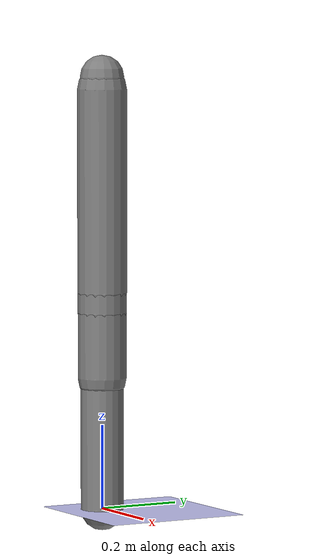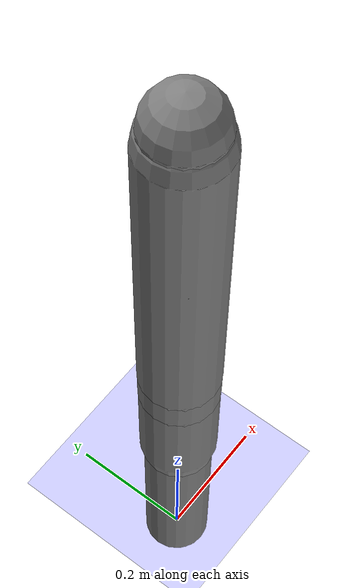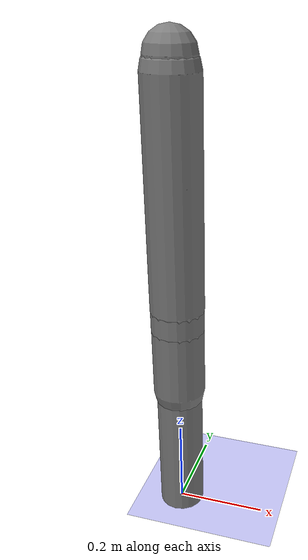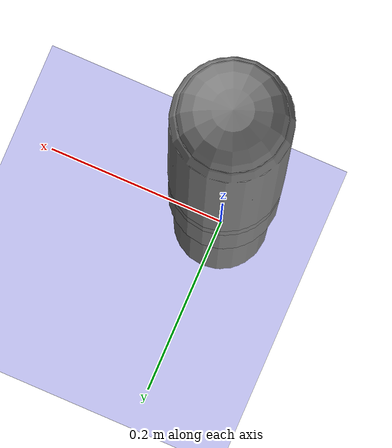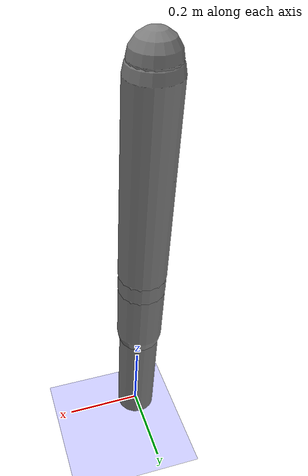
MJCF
<?xml version='1.0' encoding='UTF-8'?>
<mujoco model="robot_model">
  <worldbody>
    <light name="light" pos="0 -3 10" dir="0 0.5 -1" diffuse=".8 .8 .8" specular="0.1 0.1 0.1"/>
    <geom name="floor" type="plane" size="10.0 10.0 0.1" pos="0 0 0" rgba="0.8 0.8 1 1" contype="2" conaffinity="1"/>
    <body name="limb0" pos="0 0 0">
      <geom type="capsule" fromto="0 0 0 0 0 0.5054645170360464" size="0.051631690114759286" density="858.2988980465274" contype="1" conaffinity="2"/>
      <site type="sphere" size="0.01" name="limb0_site0" pos="0 0 0.053324120537548765"/>
      <site type="sphere" size="0.01" name="limb0_site1" pos="0 0 0.3134958929822121"/>
      <site type="sphere" size="0.01" name="limb0_site2" pos="0 0 0.39718678970513605"/>
      <freejoint name="limb0_root"/>
      <body name="limb1" pos="0 0 0.053324120537548765">
        <geom type="capsule" fromto="0 0 0 0 0 0.47684524420259916" size="0.02798061775872853" density="692.0881345958628" contype="1" conaffinity="2"/>
        <site type="sphere" size="0.01" name="limb1_site0" pos="0 0 0.4637934242458913"/>
        <site type="sphere" size="0.01" name="limb1_site1" pos="0 0 0.013525889454452836"/>
        <site type="sphere" size="0.01" name="limb1_site2" pos="0 0 0.4011781436486333"/>
        <body name="limb2" pos="0 0 0.4637934242458913">
          <geom type="capsule" fromto="0 0 0 0 0 0.4828840718443854" size="0.05924780160265376" density="519.0112097859983" contype="1" conaffinity="2"/>
          <joint name="joint_limb1_limb2_0" type="hinge" axis="0 0 1" range="-108.99355557205206 108.99355557205206" damping="5.0"/>
        </body>
        <body name="limb3" pos="0 0 0.013525889454452836">
          <geom type="capsule" fromto="0 0 0 0 0 0.3928024782626243" size="0.021620428447537386" density="891.4985975591973" contype="1" conaffinity="2"/>
          <joint name="joint_limb1_limb3_0" type="hinge" axis="0 0 1" range="-97.19185740949969 97.19185740949969" damping="5.0"/>
        </body>
        <body name="limb4" pos="0 0 0.4011781436486333">
          <geom type="capsule" fromto="0 0 0 0 0 0.4716416883188025" size="0.04051034893048312" density="452.8659973792598" contype="1" conaffinity="2"/>
          <joint name="joint_limb1_limb4_0" type="hinge" axis="0 0 1" range="-26.66900087671014 26.66900087671014" damping="5.0"/>
        </body>
        <joint name="joint_limb0_limb1_0" type="hinge" axis="0 0 1" range="-87.78866627859406 87.78866627859406" damping="5.0"/>
      </body>
      <body name="limb5" pos="0 0 0.3134958929822121">
        <geom type="capsule" fromto="0 0 0 0 0 0.2999583254750588" size="0.058183619747629485" density="740.1828998792604" contype="1" conaffinity="2"/>
        <site type="sphere" size="0.01" name="limb5_site0" pos="0 0 0.07982799083501751"/>
        <body name="limb6" pos="0 0 0.07982799083501751">
          <geom type="capsule" fromto="0 0 0 0 0 0.42075223148732316" size="0.029294916785572153" density="1138.8241278267756" contype="1" conaffinity="2"/>
          <joint name="joint_limb5_limb6_0" type="hinge" axis="0 1 0" range="-73.89344076221869 73.89344076221869" damping="5.0"/>
        </body>
        <joint name="joint_limb0_limb5_0" type="hinge" axis="0 1 0" range="-119.50965052353241 119.50965052353241" damping="5.0"/>
      </body>
      <body name="limb7" pos="0 0 0.39718678970513605">
        <geom type="capsule" fromto="0 0 0 0 0 0.2989690781950476" size="0.050309153812331656" density="823.4497281574163" contype="1" conaffinity="2"/>
        <site type="sphere" size="0.01" name="limb7_site0" pos="0 0 0.2772710770369143"/>
        <site type="sphere" size="0.01" name="limb7_site1" pos="0 0 0.07225356546491618"/>
        <site type="sphere" size="0.01" name="limb7_site2" pos="0 0 0.2420784842792399"/>
        <body name="limb8" pos="0 0 0.2772710770369143">
          <geom type="capsule" fromto="0 0 0 0 0 0.18291741476349366" size="0.05421591832810003" density="1031.368832226133" contype="1" conaffinity="2"/>
          <joint name="joint_limb7_limb8_0" type="hinge" axis="0 0 1" range="-116.79261899246464 116.79261899246464" damping="5.0"/>
        </body>
        <body name="limb9" pos="0 0 0.07225356546491618">
          <geom type="capsule" fromto="0 0 0 0 0 0.3248927368913828" size="0.0586424832313628" density="607.0916745367458" contype="1" conaffinity="2"/>
          <site type="sphere" size="0.01" name="limb9_site0" pos="0 0 0.3211453946205327"/>
          <body name="limb10" pos="0 0 0.3211453946205327">
            <geom type="capsule" fromto="0 0 0 0 0 0.2382089942244294" size="0.05271733776593019" density="953.4100928451663" contype="1" conaffinity="2"/>
            <joint name="joint_limb9_limb10_0" type="hinge" axis="1 0 0" range="-110.66857311312557 110.66857311312557" damping="5.0"/>
          </body>
          <joint name="joint_limb7_limb9_0" type="hinge" axis="0 1 0" range="-108.81183206591798 108.81183206591798" damping="5.0"/>
        </body>
        <body name="limb11" pos="0 0 0.2420784842792399">
          <geom type="capsule" fromto="0 0 0 0 0 0.33444922592509313" size="0.0315332302803031" density="843.2724017386142" contype="1" conaffinity="2"/>
          <joint name="joint_limb7_limb11_0" type="hinge" axis="1 0 0" range="-76.04759520061859 76.04759520061859" damping="5.0"/>
        </body>
        <joint name="joint_limb0_limb7_0" type="hinge" axis="0 1 0" range="-61.46558493556708 61.46558493556708" damping="5.0"/>
      </body>
    </body>
  </worldbody>
  <actuator>
    <position name="position_actuator_joint_limb0_limb1_0" joint="joint_limb0_limb1_0" gear="2.0" inheritrange="1" kp="100.0"/>
    <position name="position_actuator_joint_limb1_limb2_0" joint="joint_limb1_limb2_0" gear="1.7335607413146057" inheritrange="1" kp="100.0"/>
    <position name="position_actuator_joint_limb1_limb3_0" joint="joint_limb1_limb3_0" gear="0.6091040553383299" inheritrange="1" kp="100.0"/>
    <position name="position_actuator_joint_limb1_limb4_0" joint="joint_limb1_limb4_0" gear="1.0164649682061877" inheritrange="1" kp="100.0"/>
    <position name="position_actuator_joint_limb0_limb5_0" joint="joint_limb0_limb5_0" gear="1.923415512406648" inheritrange="1" kp="100.0"/>
    <position name="position_actuator_joint_limb5_limb6_0" joint="joint_limb5_limb6_0" gear="1.1641292434617974" inheritrange="1" kp="100.0"/>
    <position name="position_actuator_joint_limb0_limb7_0" joint="joint_limb0_limb7_0" gear="1.601725357683094" inheritrange="1" kp="100.0"/>
    <position name="position_actuator_joint_limb7_limb8_0" joint="joint_limb7_limb8_0" gear="0.5220594574480539" inheritrange="1" kp="100.0"/>
    <position name="position_actuator_joint_limb7_limb9_0" joint="joint_limb7_limb9_0" gear="0.8388041426259866" inheritrange="1" kp="100.0"/>
    <position name="position_actuator_joint_limb9_limb10_0" joint="joint_limb9_limb10_0" gear="0.5200324229517321" inheritrange="1" kp="100.0"/>
    <position name="position_actuator_joint_limb7_limb11_0" joint="joint_limb7_limb11_0" gear="0.9326318216468157" inheritrange="1" kp="100.0"/>
  </actuator>
</mujoco>
